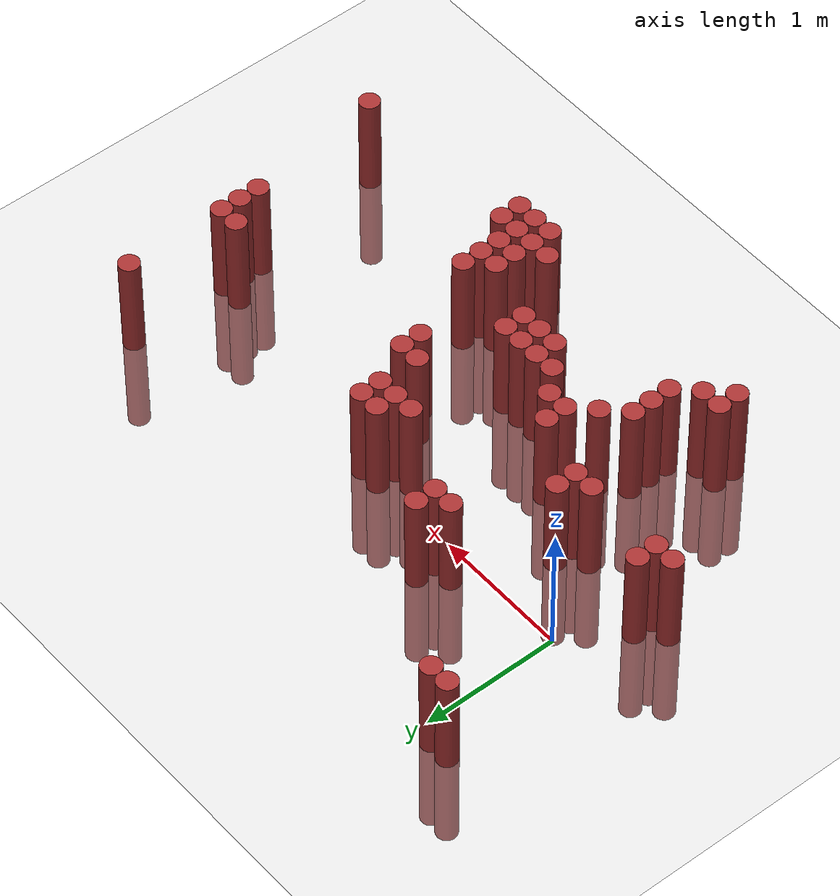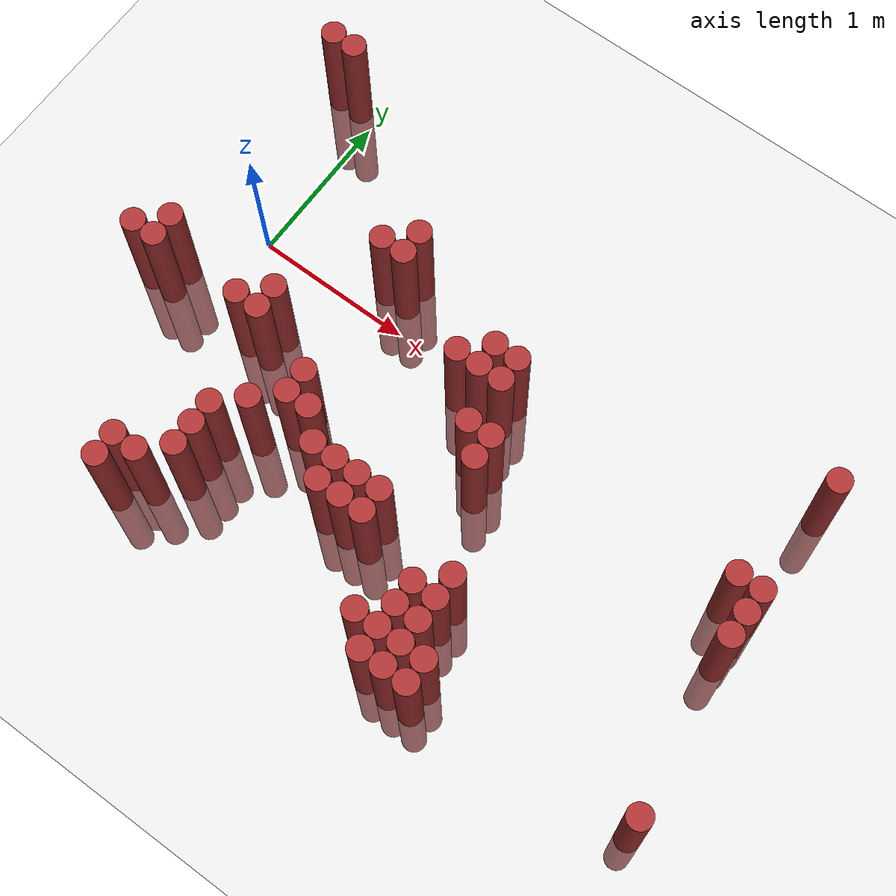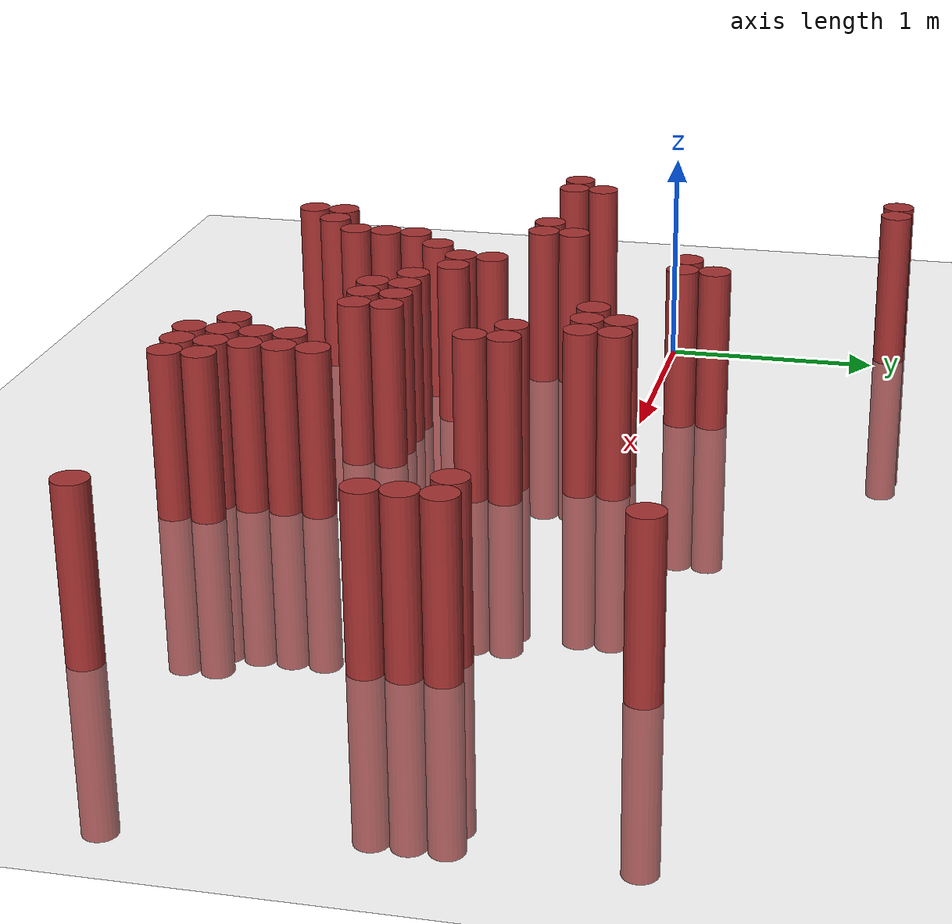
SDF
<sdf version="1.6">
 <world name="default">
  <model name="ground_plane">
   <static>1</static>
   <link name="link">
    <collision name="collision">
     <geometry><plane><normal>0 0 1</normal><size>100 100</size></plane></geometry>
     <surface><friction><ode><mu>100</mu><mu2>50</mu2></ode></friction></surface>
    </collision>
    <visual name="visual">
     <cast_shadows>0</cast_shadows>
     <geometry><plane><normal>0 0 1</normal><size>100 100</size></plane></geometry>
     <material>
      <script><uri>file://media/materials/scripts/gazebo.material</uri><name>Gazebo/Grey</name></script>
     </material>
    </visual>
   </link>
  </model>
  <model name="unit_cylinder_349">
   <static>1</static>
   <pose>-0.425000 -0.575000 0.000000 0.000000 0.000000 0.000000</pose>
   <link name="link">
    <inertial>
     <mass>1</mass>
     <inertia><ixx>0.145833</ixx><ixy>0</ixy><ixz>0</ixz><iyy>0.145833</iyy><iyz>0</iyz><izz>0.125</izz></inertia>
    </inertial>
    <collision name="collision">
     <geometry><cylinder><radius>0.075000</radius><length>1.5</length></cylinder></geometry>
    </collision>
    <visual name="visual">
     <geometry><cylinder><radius>0.075000</radius><length>1.5</length></cylinder></geometry>
     <material>
      <ambient>0.648000 0.192000 0.192000 1</ambient>
      <diffuse>0.648000 0.192000 0.192000 1</diffuse>
     </material>
     <material>
      <script><name>Gazebo/Grey</name><uri>file://media/materials/scripts/gazebo.material</uri></script>
     </material>
    </visual>
   </link>
  </model>
  <model name="unit_cylinder_351">
   <static>1</static>
   <pose>-0.275000 -0.575000 0.000000 0.000000 0.000000 0.000000</pose>
   <link name="link">
    <inertial>
     <mass>1</mass>
     <inertia><ixx>0.145833</ixx><ixy>0</ixy><ixz>0</ixz><iyy>0.145833</iyy><iyz>0</iyz><izz>0.125</izz></inertia>
    </inertial>
    <collision name="collision">
     <geometry><cylinder><radius>0.075000</radius><length>1.5</length></cylinder></geometry>
    </collision>
    <visual name="visual">
     <geometry><cylinder><radius>0.075000</radius><length>1.5</length></cylinder></geometry>
     <material>
      <ambient>0.648000 0.192000 0.192000 1</ambient>
      <diffuse>0.648000 0.192000 0.192000 1</diffuse>
     </material>
     <material>
      <script><name>Gazebo/Grey</name><uri>file://media/materials/scripts/gazebo.material</uri></script>
     </material>
    </visual>
   </link>
  </model>
  <model name="unit_cylinder_352">
   <static>1</static>
   <pose>-0.275000 -0.425000 0.000000 0.000000 0.000000 0.000000</pose>
   <link name="link">
    <inertial>
     <mass>1</mass>
     <inertia><ixx>0.145833</ixx><ixy>0</ixy><ixz>0</ixz><iyy>0.145833</iyy><iyz>0</iyz><izz>0.125</izz></inertia>
    </inertial>
    <collision name="collision">
     <geometry><cylinder><radius>0.075000</radius><length>1.5</length></cylinder></geometry>
    </collision>
    <visual name="visual">
     <geometry><cylinder><radius>0.075000</radius><length>1.5</length></cylinder></geometry>
     <material>
      <ambient>0.648000 0.192000 0.192000 1</ambient>
      <diffuse>0.648000 0.192000 0.192000 1</diffuse>
     </material>
     <material>
      <script><name>Gazebo/Grey</name><uri>file://media/materials/scripts/gazebo.material</uri></script>
     </material>
    </visual>
   </link>
  </model>
  <model name="unit_cylinder_353">
   <static>1</static>
   <pose>-0.275000 1.075000 0.000000 0.000000 0.000000 0.000000</pose>
   <link name="link">
    <inertial>
     <mass>1</mass>
     <inertia><ixx>0.145833</ixx><ixy>0</ixy><ixz>0</ixz><iyy>0.145833</iyy><iyz>0</iyz><izz>0.125</izz></inertia>
    </inertial>
    <collision name="collision">
     <geometry><cylinder><radius>0.075000</radius><length>1.5</length></cylinder></geometry>
    </collision>
    <visual name="visual">
     <geometry><cylinder><radius>0.075000</radius><length>1.5</length></cylinder></geometry>
     <material>
      <ambient>0.648000 0.192000 0.192000 1</ambient>
      <diffuse>0.648000 0.192000 0.192000 1</diffuse>
     </material>
     <material>
      <script><name>Gazebo/Grey</name><uri>file://media/materials/scripts/gazebo.material</uri></script>
     </material>
    </visual>
   </link>
  </model>
  <model name="unit_cylinder_355">
   <static>1</static>
   <pose>-0.125000 1.075000 0.000000 0.000000 0.000000 0.000000</pose>
   <link name="link">
    <inertial>
     <mass>1</mass>
     <inertia><ixx>0.145833</ixx><ixy>0</ixy><ixz>0</ixz><iyy>0.145833</iyy><iyz>0</iyz><izz>0.125</izz></inertia>
    </inertial>
    <collision name="collision">
     <geometry><cylinder><radius>0.075000</radius><length>1.5</length></cylinder></geometry>
    </collision>
    <visual name="visual">
     <geometry><cylinder><radius>0.075000</radius><length>1.5</length></cylinder></geometry>
     <material>
      <ambient>0.648000 0.192000 0.192000 1</ambient>
      <diffuse>0.648000 0.192000 0.192000 1</diffuse>
     </material>
     <material>
      <script><name>Gazebo/Grey</name><uri>file://media/materials/scripts/gazebo.material</uri></script>
     </material>
    </visual>
   </link>
  </model>
  <model name="unit_cylinder_360">
   <static>1</static>
   <pose>0.325000 -1.775000 0.000000 0.000000 0.000000 0.000000</pose>
   <link name="link">
    <inertial>
     <mass>1</mass>
     <inertia><ixx>0.145833</ixx><ixy>0</ixy><ixz>0</ixz><iyy>0.145833</iyy><iyz>0</iyz><izz>0.125</izz></inertia>
    </inertial>
    <collision name="collision">
     <geometry><cylinder><radius>0.075000</radius><length>1.5</length></cylinder></geometry>
    </collision>
    <visual name="visual">
     <geometry><cylinder><radius>0.075000</radius><length>1.5</length></cylinder></geometry>
     <material>
      <ambient>0.648000 0.192000 0.192000 1</ambient>
      <diffuse>0.648000 0.192000 0.192000 1</diffuse>
     </material>
     <material>
      <script><name>Gazebo/Grey</name><uri>file://media/materials/scripts/gazebo.material</uri></script>
     </material>
    </visual>
   </link>
  </model>
  <model name="unit_cylinder_361">
   <static>1</static>
   <pose>0.325000 -1.625000 0.000000 0.000000 0.000000 0.000000</pose>
   <link name="link">
    <inertial>
     <mass>1</mass>
     <inertia><ixx>0.145833</ixx><ixy>0</ixy><ixz>0</ixz><iyy>0.145833</iyy><iyz>0</iyz><izz>0.125</izz></inertia>
    </inertial>
    <collision name="collision">
     <geometry><cylinder><radius>0.075000</radius><length>1.5</length></cylinder></geometry>
    </collision>
    <visual name="visual">
     <geometry><cylinder><radius>0.075000</radius><length>1.5</length></cylinder></geometry>
     <material>
      <ambient>0.648000 0.192000 0.192000 1</ambient>
      <diffuse>0.648000 0.192000 0.192000 1</diffuse>
     </material>
     <material>
      <script><name>Gazebo/Grey</name><uri>file://media/materials/scripts/gazebo.material</uri></script>
     </material>
    </visual>
   </link>
  </model>
  <model name="unit_cylinder_362">
   <static>1</static>
   <pose>0.325000 -0.575000 0.000000 0.000000 0.000000 0.000000</pose>
   <link name="link">
    <inertial>
     <mass>1</mass>
     <inertia><ixx>0.145833</ixx><ixy>0</ixy><ixz>0</ixz><iyy>0.145833</iyy><iyz>0</iyz><izz>0.125</izz></inertia>
    </inertial>
    <collision name="collision">
     <geometry><cylinder><radius>0.075000</radius><length>1.5</length></cylinder></geometry>
    </collision>
    <visual name="visual">
     <geometry><cylinder><radius>0.075000</radius><length>1.5</length></cylinder></geometry>
     <material>
      <ambient>0.648000 0.192000 0.192000 1</ambient>
      <diffuse>0.648000 0.192000 0.192000 1</diffuse>
     </material>
     <material>
      <script><name>Gazebo/Grey</name><uri>file://media/materials/scripts/gazebo.material</uri></script>
     </material>
    </visual>
   </link>
  </model>
  <model name="unit_cylinder_369">
   <static>1</static>
   <pose>0.475000 -1.625000 0.000000 0.000000 0.000000 0.000000</pose>
   <link name="link">
    <inertial>
     <mass>1</mass>
     <inertia><ixx>0.145833</ixx><ixy>0</ixy><ixz>0</ixz><iyy>0.145833</iyy><iyz>0</iyz><izz>0.125</izz></inertia>
    </inertial>
    <collision name="collision">
     <geometry><cylinder><radius>0.075000</radius><length>1.5</length></cylinder></geometry>
    </collision>
    <visual name="visual">
     <geometry><cylinder><radius>0.075000</radius><length>1.5</length></cylinder></geometry>
     <material>
      <ambient>0.648000 0.192000 0.192000 1</ambient>
      <diffuse>0.648000 0.192000 0.192000 1</diffuse>
     </material>
     <material>
      <script><name>Gazebo/Grey</name><uri>file://media/materials/scripts/gazebo.material</uri></script>
     </material>
    </visual>
   </link>
  </model>
  <model name="unit_cylinder_370">
   <static>1</static>
   <pose>0.475000 -0.575000 0.000000 0.000000 0.000000 0.000000</pose>
   <link name="link">
    <inertial>
     <mass>1</mass>
     <inertia><ixx>0.145833</ixx><ixy>0</ixy><ixz>0</ixz><iyy>0.145833</iyy><iyz>0</iyz><izz>0.125</izz></inertia>
    </inertial>
    <collision name="collision">
     <geometry><cylinder><radius>0.075000</radius><length>1.5</length></cylinder></geometry>
    </collision>
    <visual name="visual">
     <geometry><cylinder><radius>0.075000</radius><length>1.5</length></cylinder></geometry>
     <material>
      <ambient>0.648000 0.192000 0.192000 1</ambient>
      <diffuse>0.648000 0.192000 0.192000 1</diffuse>
     </material>
     <material>
      <script><name>Gazebo/Grey</name><uri>file://media/materials/scripts/gazebo.material</uri></script>
     </material>
    </visual>
   </link>
  </model>
  <model name="unit_cylinder_371">
   <static>1</static>
   <pose>0.475000 -0.425000 0.000000 0.000000 0.000000 0.000000</pose>
   <link name="link">
    <inertial>
     <mass>1</mass>
     <inertia><ixx>0.145833</ixx><ixy>0</ixy><ixz>0</ixz><iyy>0.145833</iyy><iyz>0</iyz><izz>0.125</izz></inertia>
    </inertial>
    <collision name="collision">
     <geometry><cylinder><radius>0.075000</radius><length>1.5</length></cylinder></geometry>
    </collision>
    <visual name="visual">
     <geometry><cylinder><radius>0.075000</radius><length>1.5</length></cylinder></geometry>
     <material>
      <ambient>0.648000 0.192000 0.192000 1</ambient>
      <diffuse>0.648000 0.192000 0.192000 1</diffuse>
     </material>
     <material>
      <script><name>Gazebo/Grey</name><uri>file://media/materials/scripts/gazebo.material</uri></script>
     </material>
    </visual>
   </link>
  </model>
  <model name="unit_cylinder_377">
   <static>1</static>
   <pose>0.625000 -1.475000 0.000000 0.000000 0.000000 0.000000</pose>
   <link name="link">
    <inertial>
     <mass>1</mass>
     <inertia><ixx>0.145833</ixx><ixy>0</ixy><ixz>0</ixz><iyy>0.145833</iyy><iyz>0</iyz><izz>0.125</izz></inertia>
    </inertial>
    <collision name="collision">
     <geometry><cylinder><radius>0.075000</radius><length>1.5</length></cylinder></geometry>
    </collision>
    <visual name="visual">
     <geometry><cylinder><radius>0.075000</radius><length>1.5</length></cylinder></geometry>
     <material>
      <ambient>0.648000 0.192000 0.192000 1</ambient>
      <diffuse>0.648000 0.192000 0.192000 1</diffuse>
     </material>
     <material>
      <script><name>Gazebo/Grey</name><uri>file://media/materials/scripts/gazebo.material</uri></script>
     </material>
    </visual>
   </link>
  </model>
  <model name="unit_cylinder_378">
   <static>1</static>
   <pose>0.625000 -1.325000 0.000000 0.000000 0.000000 0.000000</pose>
   <link name="link">
    <inertial>
     <mass>1</mass>
     <inertia><ixx>0.145833</ixx><ixy>0</ixy><ixz>0</ixz><iyy>0.145833</iyy><iyz>0</iyz><izz>0.125</izz></inertia>
    </inertial>
    <collision name="collision">
     <geometry><cylinder><radius>0.075000</radius><length>1.5</length></cylinder></geometry>
    </collision>
    <visual name="visual">
     <geometry><cylinder><radius>0.075000</radius><length>1.5</length></cylinder></geometry>
     <material>
      <ambient>0.648000 0.192000 0.192000 1</ambient>
      <diffuse>0.648000 0.192000 0.192000 1</diffuse>
     </material>
     <material>
      <script><name>Gazebo/Grey</name><uri>file://media/materials/scripts/gazebo.material</uri></script>
     </material>
    </visual>
   </link>
  </model>
  <model name="unit_cylinder_379">
   <static>1</static>
   <pose>0.625000 -1.175000 0.000000 0.000000 0.000000 0.000000</pose>
   <link name="link">
    <inertial>
     <mass>1</mass>
     <inertia><ixx>0.145833</ixx><ixy>0</ixy><ixz>0</ixz><iyy>0.145833</iyy><iyz>0</iyz><izz>0.125</izz></inertia>
    </inertial>
    <collision name="collision">
     <geometry><cylinder><radius>0.075000</radius><length>1.5</length></cylinder></geometry>
    </collision>
    <visual name="visual">
     <geometry><cylinder><radius>0.075000</radius><length>1.5</length></cylinder></geometry>
     <material>
      <ambient>0.648000 0.192000 0.192000 1</ambient>
      <diffuse>0.648000 0.192000 0.192000 1</diffuse>
     </material>
     <material>
      <script><name>Gazebo/Grey</name><uri>file://media/materials/scripts/gazebo.material</uri></script>
     </material>
    </visual>
   </link>
  </model>
  <model name="unit_cylinder_381">
   <static>1</static>
   <pose>0.775000 -1.025000 0.000000 0.000000 0.000000 0.000000</pose>
   <link name="link">
    <inertial>
     <mass>1</mass>
     <inertia><ixx>0.145833</ixx><ixy>0</ixy><ixz>0</ixz><iyy>0.145833</iyy><iyz>0</iyz><izz>0.125</izz></inertia>
    </inertial>
    <collision name="collision">
     <geometry><cylinder><radius>0.075000</radius><length>1.5</length></cylinder></geometry>
    </collision>
    <visual name="visual">
     <geometry><cylinder><radius>0.075000</radius><length>1.5</length></cylinder></geometry>
     <material>
      <ambient>0.648000 0.192000 0.192000 1</ambient>
      <diffuse>0.648000 0.192000 0.192000 1</diffuse>
     </material>
     <material>
      <script><name>Gazebo/Grey</name><uri>file://media/materials/scripts/gazebo.material</uri></script>
     </material>
    </visual>
   </link>
  </model>
  <model name="unit_cylinder_382">
   <static>1</static>
   <pose>0.775000 0.175000 0.000000 0.000000 0.000000 0.000000</pose>
   <link name="link">
    <inertial>
     <mass>1</mass>
     <inertia><ixx>0.145833</ixx><ixy>0</ixy><ixz>0</ixz><iyy>0.145833</iyy><iyz>0</iyz><izz>0.125</izz></inertia>
    </inertial>
    <collision name="collision">
     <geometry><cylinder><radius>0.075000</radius><length>1.5</length></cylinder></geometry>
    </collision>
    <visual name="visual">
     <geometry><cylinder><radius>0.075000</radius><length>1.5</length></cylinder></geometry>
     <material>
      <ambient>0.648000 0.192000 0.192000 1</ambient>
      <diffuse>0.648000 0.192000 0.192000 1</diffuse>
     </material>
     <material>
      <script><name>Gazebo/Grey</name><uri>file://media/materials/scripts/gazebo.material</uri></script>
     </material>
    </visual>
   </link>
  </model>
  <model name="unit_cylinder_383">
   <static>1</static>
   <pose>0.925000 -0.875000 0.000000 0.000000 0.000000 0.000000</pose>
   <link name="link">
    <inertial>
     <mass>1</mass>
     <inertia><ixx>0.145833</ixx><ixy>0</ixy><ixz>0</ixz><iyy>0.145833</iyy><iyz>0</iyz><izz>0.125</izz></inertia>
    </inertial>
    <collision name="collision">
     <geometry><cylinder><radius>0.075000</radius><length>1.5</length></cylinder></geometry>
    </collision>
    <visual name="visual">
     <geometry><cylinder><radius>0.075000</radius><length>1.5</length></cylinder></geometry>
     <material>
      <ambient>0.648000 0.192000 0.192000 1</ambient>
      <diffuse>0.648000 0.192000 0.192000 1</diffuse>
     </material>
     <material>
      <script><name>Gazebo/Grey</name><uri>file://media/materials/scripts/gazebo.material</uri></script>
     </material>
    </visual>
   </link>
  </model>
  <model name="unit_cylinder_384">
   <static>1</static>
   <pose>0.925000 -0.725000 0.000000 0.000000 0.000000 0.000000</pose>
   <link name="link">
    <inertial>
     <mass>1</mass>
     <inertia><ixx>0.145833</ixx><ixy>0</ixy><ixz>0</ixz><iyy>0.145833</iyy><iyz>0</iyz><izz>0.125</izz></inertia>
    </inertial>
    <collision name="collision">
     <geometry><cylinder><radius>0.075000</radius><length>1.5</length></cylinder></geometry>
    </collision>
    <visual name="visual">
     <geometry><cylinder><radius>0.075000</radius><length>1.5</length></cylinder></geometry>
     <material>
      <ambient>0.648000 0.192000 0.192000 1</ambient>
      <diffuse>0.648000 0.192000 0.192000 1</diffuse>
     </material>
     <material>
      <script><name>Gazebo/Grey</name><uri>file://media/materials/scripts/gazebo.material</uri></script>
     </material>
    </visual>
   </link>
  </model>
  <model name="unit_cylinder_385">
   <static>1</static>
   <pose>0.925000 0.175000 0.000000 0.000000 0.000000 0.000000</pose>
   <link name="link">
    <inertial>
     <mass>1</mass>
     <inertia><ixx>0.145833</ixx><ixy>0</ixy><ixz>0</ixz><iyy>0.145833</iyy><iyz>0</iyz><izz>0.125</izz></inertia>
    </inertial>
    <collision name="collision">
     <geometry><cylinder><radius>0.075000</radius><length>1.5</length></cylinder></geometry>
    </collision>
    <visual name="visual">
     <geometry><cylinder><radius>0.075000</radius><length>1.5</length></cylinder></geometry>
     <material>
      <ambient>0.648000 0.192000 0.192000 1</ambient>
      <diffuse>0.648000 0.192000 0.192000 1</diffuse>
     </material>
     <material>
      <script><name>Gazebo/Grey</name><uri>file://media/materials/scripts/gazebo.material</uri></script>
     </material>
    </visual>
   </link>
  </model>
  <model name="unit_cylinder_386">
   <static>1</static>
   <pose>0.925000 0.325000 0.000000 0.000000 0.000000 0.000000</pose>
   <link name="link">
    <inertial>
     <mass>1</mass>
     <inertia><ixx>0.145833</ixx><ixy>0</ixy><ixz>0</ixz><iyy>0.145833</iyy><iyz>0</iyz><izz>0.125</izz></inertia>
    </inertial>
    <collision name="collision">
     <geometry><cylinder><radius>0.075000</radius><length>1.5</length></cylinder></geometry>
    </collision>
    <visual name="visual">
     <geometry><cylinder><radius>0.075000</radius><length>1.5</length></cylinder></geometry>
     <material>
      <ambient>0.648000 0.192000 0.192000 1</ambient>
      <diffuse>0.648000 0.192000 0.192000 1</diffuse>
     </material>
     <material>
      <script><name>Gazebo/Grey</name><uri>file://media/materials/scripts/gazebo.material</uri></script>
     </material>
    </visual>
   </link>
  </model>
  <model name="unit_cylinder_387">
   <static>1</static>
   <pose>1.075000 -0.875000 0.000000 0.000000 0.000000 0.000000</pose>
   <link name="link">
    <inertial>
     <mass>1</mass>
     <inertia><ixx>0.145833</ixx><ixy>0</ixy><ixz>0</ixz><iyy>0.145833</iyy><iyz>0</iyz><izz>0.125</izz></inertia>
    </inertial>
    <collision name="collision">
     <geometry><cylinder><radius>0.075000</radius><length>1.5</length></cylinder></geometry>
    </collision>
    <visual name="visual">
     <geometry><cylinder><radius>0.075000</radius><length>1.5</length></cylinder></geometry>
     <material>
      <ambient>0.648000 0.192000 0.192000 1</ambient>
      <diffuse>0.648000 0.192000 0.192000 1</diffuse>
     </material>
     <material>
      <script><name>Gazebo/Grey</name><uri>file://media/materials/scripts/gazebo.material</uri></script>
     </material>
    </visual>
   </link>
  </model>
  <model name="unit_cylinder_388">
   <static>1</static>
   <pose>1.225000 -1.025000 0.000000 0.000000 0.000000 0.000000</pose>
   <link name="link">
    <inertial>
     <mass>1</mass>
     <inertia><ixx>0.145833</ixx><ixy>0</ixy><ixz>0</ixz><iyy>0.145833</iyy><iyz>0</iyz><izz>0.125</izz></inertia>
    </inertial>
    <collision name="collision">
     <geometry><cylinder><radius>0.075000</radius><length>1.5</length></cylinder></geometry>
    </collision>
    <visual name="visual">
     <geometry><cylinder><radius>0.075000</radius><length>1.5</length></cylinder></geometry>
     <material>
      <ambient>0.648000 0.192000 0.192000 1</ambient>
      <diffuse>0.648000 0.192000 0.192000 1</diffuse>
     </material>
     <material>
      <script><name>Gazebo/Grey</name><uri>file://media/materials/scripts/gazebo.material</uri></script>
     </material>
    </visual>
   </link>
  </model>
  <model name="unit_cylinder_389">
   <static>1</static>
   <pose>1.375000 -1.175000 0.000000 0.000000 0.000000 0.000000</pose>
   <link name="link">
    <inertial>
     <mass>1</mass>
     <inertia><ixx>0.145833</ixx><ixy>0</ixy><ixz>0</ixz><iyy>0.145833</iyy><iyz>0</iyz><izz>0.125</izz></inertia>
    </inertial>
    <collision name="collision">
     <geometry><cylinder><radius>0.075000</radius><length>1.5</length></cylinder></geometry>
    </collision>
    <visual name="visual">
     <geometry><cylinder><radius>0.075000</radius><length>1.5</length></cylinder></geometry>
     <material>
      <ambient>0.648000 0.192000 0.192000 1</ambient>
      <diffuse>0.648000 0.192000 0.192000 1</diffuse>
     </material>
     <material>
      <script><name>Gazebo/Grey</name><uri>file://media/materials/scripts/gazebo.material</uri></script>
     </material>
    </visual>
   </link>
  </model>
  <model name="unit_cylinder_390">
   <static>1</static>
   <pose>1.375000 -1.025000 0.000000 0.000000 0.000000 0.000000</pose>
   <link name="link">
    <inertial>
     <mass>1</mass>
     <inertia><ixx>0.145833</ixx><ixy>0</ixy><ixz>0</ixz><iyy>0.145833</iyy><iyz>0</iyz><izz>0.125</izz></inertia>
    </inertial>
    <collision name="collision">
     <geometry><cylinder><radius>0.075000</radius><length>1.5</length></cylinder></geometry>
    </collision>
    <visual name="visual">
     <geometry><cylinder><radius>0.075000</radius><length>1.5</length></cylinder></geometry>
     <material>
      <ambient>0.648000 0.192000 0.192000 1</ambient>
      <diffuse>0.648000 0.192000 0.192000 1</diffuse>
     </material>
     <material>
      <script><name>Gazebo/Grey</name><uri>file://media/materials/scripts/gazebo.material</uri></script>
     </material>
    </visual>
   </link>
  </model>
  <model name="unit_cylinder_392">
   <static>1</static>
   <pose>1.525000 -1.175000 0.000000 0.000000 0.000000 0.000000</pose>
   <link name="link">
    <inertial>
     <mass>1</mass>
     <inertia><ixx>0.145833</ixx><ixy>0</ixy><ixz>0</ixz><iyy>0.145833</iyy><iyz>0</iyz><izz>0.125</izz></inertia>
    </inertial>
    <collision name="collision">
     <geometry><cylinder><radius>0.075000</radius><length>1.5</length></cylinder></geometry>
    </collision>
    <visual name="visual">
     <geometry><cylinder><radius>0.075000</radius><length>1.5</length></cylinder></geometry>
     <material>
      <ambient>0.648000 0.192000 0.192000 1</ambient>
      <diffuse>0.648000 0.192000 0.192000 1</diffuse>
     </material>
     <material>
      <script><name>Gazebo/Grey</name><uri>file://media/materials/scripts/gazebo.material</uri></script>
     </material>
    </visual>
   </link>
  </model>
  <model name="unit_cylinder_393">
   <static>1</static>
   <pose>1.525000 -1.025000 0.000000 0.000000 0.000000 0.000000</pose>
   <link name="link">
    <inertial>
     <mass>1</mass>
     <inertia><ixx>0.145833</ixx><ixy>0</ixy><ixz>0</ixz><iyy>0.145833</iyy><iyz>0</iyz><izz>0.125</izz></inertia>
    </inertial>
    <collision name="collision">
     <geometry><cylinder><radius>0.075000</radius><length>1.5</length></cylinder></geometry>
    </collision>
    <visual name="visual">
     <geometry><cylinder><radius>0.075000</radius><length>1.5</length></cylinder></geometry>
     <material>
      <ambient>0.648000 0.192000 0.192000 1</ambient>
      <diffuse>0.648000 0.192000 0.192000 1</diffuse>
     </material>
     <material>
      <script><name>Gazebo/Grey</name><uri>file://media/materials/scripts/gazebo.material</uri></script>
     </material>
    </visual>
   </link>
  </model>
  <model name="unit_cylinder_394">
   <static>1</static>
   <pose>1.525000 -0.125000 0.000000 0.000000 0.000000 0.000000</pose>
   <link name="link">
    <inertial>
     <mass>1</mass>
     <inertia><ixx>0.145833</ixx><ixy>0</ixy><ixz>0</ixz><iyy>0.145833</iyy><iyz>0</iyz><izz>0.125</izz></inertia>
    </inertial>
    <collision name="collision">
     <geometry><cylinder><radius>0.075000</radius><length>1.5</length></cylinder></geometry>
    </collision>
    <visual name="visual">
     <geometry><cylinder><radius>0.075000</radius><length>1.5</length></cylinder></geometry>
     <material>
      <ambient>0.648000 0.192000 0.192000 1</ambient>
      <diffuse>0.648000 0.192000 0.192000 1</diffuse>
     </material>
     <material>
      <script><name>Gazebo/Grey</name><uri>file://media/materials/scripts/gazebo.material</uri></script>
     </material>
    </visual>
   </link>
  </model>
  <model name="unit_cylinder_397">
   <static>1</static>
   <pose>1.675000 -1.175000 0.000000 0.000000 0.000000 0.000000</pose>
   <link name="link">
    <inertial>
     <mass>1</mass>
     <inertia><ixx>0.145833</ixx><ixy>0</ixy><ixz>0</ixz><iyy>0.145833</iyy><iyz>0</iyz><izz>0.125</izz></inertia>
    </inertial>
    <collision name="collision">
     <geometry><cylinder><radius>0.075000</radius><length>1.5</length></cylinder></geometry>
    </collision>
    <visual name="visual">
     <geometry><cylinder><radius>0.075000</radius><length>1.5</length></cylinder></geometry>
     <material>
      <ambient>0.648000 0.192000 0.192000 1</ambient>
      <diffuse>0.648000 0.192000 0.192000 1</diffuse>
     </material>
     <material>
      <script><name>Gazebo/Grey</name><uri>file://media/materials/scripts/gazebo.material</uri></script>
     </material>
    </visual>
   </link>
  </model>
  <model name="unit_cylinder_398">
   <static>1</static>
   <pose>1.675000 -1.025000 0.000000 0.000000 0.000000 0.000000</pose>
   <link name="link">
    <inertial>
     <mass>1</mass>
     <inertia><ixx>0.145833</ixx><ixy>0</ixy><ixz>0</ixz><iyy>0.145833</iyy><iyz>0</iyz><izz>0.125</izz></inertia>
    </inertial>
    <collision name="collision">
     <geometry><cylinder><radius>0.075000</radius><length>1.5</length></cylinder></geometry>
    </collision>
    <visual name="visual">
     <geometry><cylinder><radius>0.075000</radius><length>1.5</length></cylinder></geometry>
     <material>
      <ambient>0.648000 0.192000 0.192000 1</ambient>
      <diffuse>0.648000 0.192000 0.192000 1</diffuse>
     </material>
     <material>
      <script><name>Gazebo/Grey</name><uri>file://media/materials/scripts/gazebo.material</uri></script>
     </material>
    </visual>
   </link>
  </model>
  <model name="unit_cylinder_399">
   <static>1</static>
   <pose>1.675000 -0.125000 0.000000 0.000000 0.000000 0.000000</pose>
   <link name="link">
    <inertial>
     <mass>1</mass>
     <inertia><ixx>0.145833</ixx><ixy>0</ixy><ixz>0</ixz><iyy>0.145833</iyy><iyz>0</iyz><izz>0.125</izz></inertia>
    </inertial>
    <collision name="collision">
     <geometry><cylinder><radius>0.075000</radius><length>1.5</length></cylinder></geometry>
    </collision>
    <visual name="visual">
     <geometry><cylinder><radius>0.075000</radius><length>1.5</length></cylinder></geometry>
     <material>
      <ambient>0.648000 0.192000 0.192000 1</ambient>
      <diffuse>0.648000 0.192000 0.192000 1</diffuse>
     </material>
     <material>
      <script><name>Gazebo/Grey</name><uri>file://media/materials/scripts/gazebo.material</uri></script>
     </material>
    </visual>
   </link>
  </model>
  <model name="unit_cylinder_400">
   <static>1</static>
   <pose>1.675000 0.025000 0.000000 0.000000 0.000000 0.000000</pose>
   <link name="link">
    <inertial>
     <mass>1</mass>
     <inertia><ixx>0.145833</ixx><ixy>0</ixy><ixz>0</ixz><iyy>0.145833</iyy><iyz>0</iyz><izz>0.125</izz></inertia>
    </inertial>
    <collision name="collision">
     <geometry><cylinder><radius>0.075000</radius><length>1.5</length></cylinder></geometry>
    </collision>
    <visual name="visual">
     <geometry><cylinder><radius>0.075000</radius><length>1.5</length></cylinder></geometry>
     <material>
      <ambient>0.648000 0.192000 0.192000 1</ambient>
      <diffuse>0.648000 0.192000 0.192000 1</diffuse>
     </material>
     <material>
      <script><name>Gazebo/Grey</name><uri>file://media/materials/scripts/gazebo.material</uri></script>
     </material>
    </visual>
   </link>
  </model>
  <model name="unit_cylinder_401">
   <static>1</static>
   <pose>1.825000 -0.425000 0.000000 0.000000 0.000000 0.000000</pose>
   <link name="link">
    <inertial>
     <mass>1</mass>
     <inertia><ixx>0.145833</ixx><ixy>0</ixy><ixz>0</ixz><iyy>0.145833</iyy><iyz>0</iyz><izz>0.125</izz></inertia>
    </inertial>
    <collision name="collision">
     <geometry><cylinder><radius>0.075000</radius><length>1.5</length></cylinder></geometry>
    </collision>
    <visual name="visual">
     <geometry><cylinder><radius>0.075000</radius><length>1.5</length></cylinder></geometry>
     <material>
      <ambient>0.648000 0.192000 0.192000 1</ambient>
      <diffuse>0.648000 0.192000 0.192000 1</diffuse>
     </material>
     <material>
      <script><name>Gazebo/Grey</name><uri>file://media/materials/scripts/gazebo.material</uri></script>
     </material>
    </visual>
   </link>
  </model>
  <model name="unit_cylinder_402">
   <static>1</static>
   <pose>1.825000 -0.125000 0.000000 0.000000 0.000000 0.000000</pose>
   <link name="link">
    <inertial>
     <mass>1</mass>
     <inertia><ixx>0.145833</ixx><ixy>0</ixy><ixz>0</ixz><iyy>0.145833</iyy><iyz>0</iyz><izz>0.125</izz></inertia>
    </inertial>
    <collision name="collision">
     <geometry><cylinder><radius>0.075000</radius><length>1.5</length></cylinder></geometry>
    </collision>
    <visual name="visual">
     <geometry><cylinder><radius>0.075000</radius><length>1.5</length></cylinder></geometry>
     <material>
      <ambient>0.648000 0.192000 0.192000 1</ambient>
      <diffuse>0.648000 0.192000 0.192000 1</diffuse>
     </material>
     <material>
      <script><name>Gazebo/Grey</name><uri>file://media/materials/scripts/gazebo.material</uri></script>
     </material>
    </visual>
   </link>
  </model>
  <model name="unit_cylinder_403">
   <static>1</static>
   <pose>1.825000 0.025000 0.000000 0.000000 0.000000 0.000000</pose>
   <link name="link">
    <inertial>
     <mass>1</mass>
     <inertia><ixx>0.145833</ixx><ixy>0</ixy><ixz>0</ixz><iyy>0.145833</iyy><iyz>0</iyz><izz>0.125</izz></inertia>
    </inertial>
    <collision name="collision">
     <geometry><cylinder><radius>0.075000</radius><length>1.5</length></cylinder></geometry>
    </collision>
    <visual name="visual">
     <geometry><cylinder><radius>0.075000</radius><length>1.5</length></cylinder></geometry>
     <material>
      <ambient>0.648000 0.192000 0.192000 1</ambient>
      <diffuse>0.648000 0.192000 0.192000 1</diffuse>
     </material>
     <material>
      <script><name>Gazebo/Grey</name><uri>file://media/materials/scripts/gazebo.material</uri></script>
     </material>
    </visual>
   </link>
  </model>
  <model name="unit_cylinder_406">
   <static>1</static>
   <pose>1.975000 -1.625000 0.000000 0.000000 0.000000 0.000000</pose>
   <link name="link">
    <inertial>
     <mass>1</mass>
     <inertia><ixx>0.145833</ixx><ixy>0</ixy><ixz>0</ixz><iyy>0.145833</iyy><iyz>0</iyz><izz>0.125</izz></inertia>
    </inertial>
    <collision name="collision">
     <geometry><cylinder><radius>0.075000</radius><length>1.5</length></cylinder></geometry>
    </collision>
    <visual name="visual">
     <geometry><cylinder><radius>0.075000</radius><length>1.5</length></cylinder></geometry>
     <material>
      <ambient>0.648000 0.192000 0.192000 1</ambient>
      <diffuse>0.648000 0.192000 0.192000 1</diffuse>
     </material>
     <material>
      <script><name>Gazebo/Grey</name><uri>file://media/materials/scripts/gazebo.material</uri></script>
     </material>
    </visual>
   </link>
  </model>
  <model name="unit_cylinder_407">
   <static>1</static>
   <pose>1.975000 -0.575000 0.000000 0.000000 0.000000 0.000000</pose>
   <link name="link">
    <inertial>
     <mass>1</mass>
     <inertia><ixx>0.145833</ixx><ixy>0</ixy><ixz>0</ixz><iyy>0.145833</iyy><iyz>0</iyz><izz>0.125</izz></inertia>
    </inertial>
    <collision name="collision">
     <geometry><cylinder><radius>0.075000</radius><length>1.5</length></cylinder></geometry>
    </collision>
    <visual name="visual">
     <geometry><cylinder><radius>0.075000</radius><length>1.5</length></cylinder></geometry>
     <material>
      <ambient>0.648000 0.192000 0.192000 1</ambient>
      <diffuse>0.648000 0.192000 0.192000 1</diffuse>
     </material>
     <material>
      <script><name>Gazebo/Grey</name><uri>file://media/materials/scripts/gazebo.material</uri></script>
     </material>
    </visual>
   </link>
  </model>
  <model name="unit_cylinder_408">
   <static>1</static>
   <pose>1.975000 -0.425000 0.000000 0.000000 0.000000 0.000000</pose>
   <link name="link">
    <inertial>
     <mass>1</mass>
     <inertia><ixx>0.145833</ixx><ixy>0</ixy><ixz>0</ixz><iyy>0.145833</iyy><iyz>0</iyz><izz>0.125</izz></inertia>
    </inertial>
    <collision name="collision">
     <geometry><cylinder><radius>0.075000</radius><length>1.5</length></cylinder></geometry>
    </collision>
    <visual name="visual">
     <geometry><cylinder><radius>0.075000</radius><length>1.5</length></cylinder></geometry>
     <material>
      <ambient>0.648000 0.192000 0.192000 1</ambient>
      <diffuse>0.648000 0.192000 0.192000 1</diffuse>
     </material>
     <material>
      <script><name>Gazebo/Grey</name><uri>file://media/materials/scripts/gazebo.material</uri></script>
     </material>
    </visual>
   </link>
  </model>
  <model name="unit_cylinder_412">
   <static>1</static>
   <pose>2.125000 -1.775000 0.000000 0.000000 0.000000 0.000000</pose>
   <link name="link">
    <inertial>
     <mass>1</mass>
     <inertia><ixx>0.145833</ixx><ixy>0</ixy><ixz>0</ixz><iyy>0.145833</iyy><iyz>0</iyz><izz>0.125</izz></inertia>
    </inertial>
    <collision name="collision">
     <geometry><cylinder><radius>0.075000</radius><length>1.5</length></cylinder></geometry>
    </collision>
    <visual name="visual">
     <geometry><cylinder><radius>0.075000</radius><length>1.5</length></cylinder></geometry>
     <material>
      <ambient>0.648000 0.192000 0.192000 1</ambient>
      <diffuse>0.648000 0.192000 0.192000 1</diffuse>
     </material>
     <material>
      <script><name>Gazebo/Grey</name><uri>file://media/materials/scripts/gazebo.material</uri></script>
     </material>
    </visual>
   </link>
  </model>
  <model name="unit_cylinder_413">
   <static>1</static>
   <pose>2.125000 -1.625000 0.000000 0.000000 0.000000 0.000000</pose>
   <link name="link">
    <inertial>
     <mass>1</mass>
     <inertia><ixx>0.145833</ixx><ixy>0</ixy><ixz>0</ixz><iyy>0.145833</iyy><iyz>0</iyz><izz>0.125</izz></inertia>
    </inertial>
    <collision name="collision">
     <geometry><cylinder><radius>0.075000</radius><length>1.5</length></cylinder></geometry>
    </collision>
    <visual name="visual">
     <geometry><cylinder><radius>0.075000</radius><length>1.5</length></cylinder></geometry>
     <material>
      <ambient>0.648000 0.192000 0.192000 1</ambient>
      <diffuse>0.648000 0.192000 0.192000 1</diffuse>
     </material>
     <material>
      <script><name>Gazebo/Grey</name><uri>file://media/materials/scripts/gazebo.material</uri></script>
     </material>
    </visual>
   </link>
  </model>
  <model name="unit_cylinder_414">
   <static>1</static>
   <pose>2.125000 -1.475000 0.000000 0.000000 0.000000 0.000000</pose>
   <link name="link">
    <inertial>
     <mass>1</mass>
     <inertia><ixx>0.145833</ixx><ixy>0</ixy><ixz>0</ixz><iyy>0.145833</iyy><iyz>0</iyz><izz>0.125</izz></inertia>
    </inertial>
    <collision name="collision">
     <geometry><cylinder><radius>0.075000</radius><length>1.5</length></cylinder></geometry>
    </collision>
    <visual name="visual">
     <geometry><cylinder><radius>0.075000</radius><length>1.5</length></cylinder></geometry>
     <material>
      <ambient>0.648000 0.192000 0.192000 1</ambient>
      <diffuse>0.648000 0.192000 0.192000 1</diffuse>
     </material>
     <material>
      <script><name>Gazebo/Grey</name><uri>file://media/materials/scripts/gazebo.material</uri></script>
     </material>
    </visual>
   </link>
  </model>
  <model name="unit_cylinder_415">
   <static>1</static>
   <pose>2.125000 -1.325000 0.000000 0.000000 0.000000 0.000000</pose>
   <link name="link">
    <inertial>
     <mass>1</mass>
     <inertia><ixx>0.145833</ixx><ixy>0</ixy><ixz>0</ixz><iyy>0.145833</iyy><iyz>0</iyz><izz>0.125</izz></inertia>
    </inertial>
    <collision name="collision">
     <geometry><cylinder><radius>0.075000</radius><length>1.5</length></cylinder></geometry>
    </collision>
    <visual name="visual">
     <geometry><cylinder><radius>0.075000</radius><length>1.5</length></cylinder></geometry>
     <material>
      <ambient>0.648000 0.192000 0.192000 1</ambient>
      <diffuse>0.648000 0.192000 0.192000 1</diffuse>
     </material>
     <material>
      <script><name>Gazebo/Grey</name><uri>file://media/materials/scripts/gazebo.material</uri></script>
     </material>
    </visual>
   </link>
  </model>
  <model name="unit_cylinder_419">
   <static>1</static>
   <pose>2.275000 -1.775000 0.000000 0.000000 0.000000 0.000000</pose>
   <link name="link">
    <inertial>
     <mass>1</mass>
     <inertia><ixx>0.145833</ixx><ixy>0</ixy><ixz>0</ixz><iyy>0.145833</iyy><iyz>0</iyz><izz>0.125</izz></inertia>
    </inertial>
    <collision name="collision">
     <geometry><cylinder><radius>0.075000</radius><length>1.5</length></cylinder></geometry>
    </collision>
    <visual name="visual">
     <geometry><cylinder><radius>0.075000</radius><length>1.5</length></cylinder></geometry>
     <material>
      <ambient>0.648000 0.192000 0.192000 1</ambient>
      <diffuse>0.648000 0.192000 0.192000 1</diffuse>
     </material>
     <material>
      <script><name>Gazebo/Grey</name><uri>file://media/materials/scripts/gazebo.material</uri></script>
     </material>
    </visual>
   </link>
  </model>
  <model name="unit_cylinder_420">
   <static>1</static>
   <pose>2.275000 -1.625000 0.000000 0.000000 0.000000 0.000000</pose>
   <link name="link">
    <inertial>
     <mass>1</mass>
     <inertia><ixx>0.145833</ixx><ixy>0</ixy><ixz>0</ixz><iyy>0.145833</iyy><iyz>0</iyz><izz>0.125</izz></inertia>
    </inertial>
    <collision name="collision">
     <geometry><cylinder><radius>0.075000</radius><length>1.5</length></cylinder></geometry>
    </collision>
    <visual name="visual">
     <geometry><cylinder><radius>0.075000</radius><length>1.5</length></cylinder></geometry>
     <material>
      <ambient>0.648000 0.192000 0.192000 1</ambient>
      <diffuse>0.648000 0.192000 0.192000 1</diffuse>
     </material>
     <material>
      <script><name>Gazebo/Grey</name><uri>file://media/materials/scripts/gazebo.material</uri></script>
     </material>
    </visual>
   </link>
  </model>
  <model name="unit_cylinder_421">
   <static>1</static>
   <pose>2.275000 -1.475000 0.000000 0.000000 0.000000 0.000000</pose>
   <link name="link">
    <inertial>
     <mass>1</mass>
     <inertia><ixx>0.145833</ixx><ixy>0</ixy><ixz>0</ixz><iyy>0.145833</iyy><iyz>0</iyz><izz>0.125</izz></inertia>
    </inertial>
    <collision name="collision">
     <geometry><cylinder><radius>0.075000</radius><length>1.5</length></cylinder></geometry>
    </collision>
    <visual name="visual">
     <geometry><cylinder><radius>0.075000</radius><length>1.5</length></cylinder></geometry>
     <material>
      <ambient>0.648000 0.192000 0.192000 1</ambient>
      <diffuse>0.648000 0.192000 0.192000 1</diffuse>
     </material>
     <material>
      <script><name>Gazebo/Grey</name><uri>file://media/materials/scripts/gazebo.material</uri></script>
     </material>
    </visual>
   </link>
  </model>
  <model name="unit_cylinder_422">
   <static>1</static>
   <pose>2.275000 -1.325000 0.000000 0.000000 0.000000 0.000000</pose>
   <link name="link">
    <inertial>
     <mass>1</mass>
     <inertia><ixx>0.145833</ixx><ixy>0</ixy><ixz>0</ixz><iyy>0.145833</iyy><iyz>0</iyz><izz>0.125</izz></inertia>
    </inertial>
    <collision name="collision">
     <geometry><cylinder><radius>0.075000</radius><length>1.5</length></cylinder></geometry>
    </collision>
    <visual name="visual">
     <geometry><cylinder><radius>0.075000</radius><length>1.5</length></cylinder></geometry>
     <material>
      <ambient>0.648000 0.192000 0.192000 1</ambient>
      <diffuse>0.648000 0.192000 0.192000 1</diffuse>
     </material>
     <material>
      <script><name>Gazebo/Grey</name><uri>file://media/materials/scripts/gazebo.material</uri></script>
     </material>
    </visual>
   </link>
  </model>
  <model name="unit_cylinder_423">
   <static>1</static>
   <pose>2.275000 -1.175000 0.000000 0.000000 0.000000 0.000000</pose>
   <link name="link">
    <inertial>
     <mass>1</mass>
     <inertia><ixx>0.145833</ixx><ixy>0</ixy><ixz>0</ixz><iyy>0.145833</iyy><iyz>0</iyz><izz>0.125</izz></inertia>
    </inertial>
    <collision name="collision">
     <geometry><cylinder><radius>0.075000</radius><length>1.5</length></cylinder></geometry>
    </collision>
    <visual name="visual">
     <geometry><cylinder><radius>0.075000</radius><length>1.5</length></cylinder></geometry>
     <material>
      <ambient>0.648000 0.192000 0.192000 1</ambient>
      <diffuse>0.648000 0.192000 0.192000 1</diffuse>
     </material>
     <material>
      <script><name>Gazebo/Grey</name><uri>file://media/materials/scripts/gazebo.material</uri></script>
     </material>
    </visual>
   </link>
  </model>
  <model name="unit_cylinder_424">
   <static>1</static>
   <pose>2.425000 -1.775000 0.000000 0.000000 0.000000 0.000000</pose>
   <link name="link">
    <inertial>
     <mass>1</mass>
     <inertia><ixx>0.145833</ixx><ixy>0</ixy><ixz>0</ixz><iyy>0.145833</iyy><iyz>0</iyz><izz>0.125</izz></inertia>
    </inertial>
    <collision name="collision">
     <geometry><cylinder><radius>0.075000</radius><length>1.5</length></cylinder></geometry>
    </collision>
    <visual name="visual">
     <geometry><cylinder><radius>0.075000</radius><length>1.5</length></cylinder></geometry>
     <material>
      <ambient>0.648000 0.192000 0.192000 1</ambient>
      <diffuse>0.648000 0.192000 0.192000 1</diffuse>
     </material>
     <material>
      <script><name>Gazebo/Grey</name><uri>file://media/materials/scripts/gazebo.material</uri></script>
     </material>
    </visual>
   </link>
  </model>
  <model name="unit_cylinder_425">
   <static>1</static>
   <pose>2.425000 -1.625000 0.000000 0.000000 0.000000 0.000000</pose>
   <link name="link">
    <inertial>
     <mass>1</mass>
     <inertia><ixx>0.145833</ixx><ixy>0</ixy><ixz>0</ixz><iyy>0.145833</iyy><iyz>0</iyz><izz>0.125</izz></inertia>
    </inertial>
    <collision name="collision">
     <geometry><cylinder><radius>0.075000</radius><length>1.5</length></cylinder></geometry>
    </collision>
    <visual name="visual">
     <geometry><cylinder><radius>0.075000</radius><length>1.5</length></cylinder></geometry>
     <material>
      <ambient>0.648000 0.192000 0.192000 1</ambient>
      <diffuse>0.648000 0.192000 0.192000 1</diffuse>
     </material>
     <material>
      <script><name>Gazebo/Grey</name><uri>file://media/materials/scripts/gazebo.material</uri></script>
     </material>
    </visual>
   </link>
  </model>
  <model name="unit_cylinder_446">
   <static>1</static>
   <pose>3.475000 -0.275000 0.000000 0.000000 0.000000 0.000000</pose>
   <link name="link">
    <inertial>
     <mass>1</mass>
     <inertia><ixx>0.145833</ixx><ixy>0</ixy><ixz>0</ixz><iyy>0.145833</iyy><iyz>0</iyz><izz>0.125</izz></inertia>
    </inertial>
    <collision name="collision">
     <geometry><cylinder><radius>0.075000</radius><length>1.5</length></cylinder></geometry>
    </collision>
    <visual name="visual">
     <geometry><cylinder><radius>0.075000</radius><length>1.5</length></cylinder></geometry>
     <material>
      <ambient>0.648000 0.192000 0.192000 1</ambient>
      <diffuse>0.648000 0.192000 0.192000 1</diffuse>
     </material>
     <material>
      <script><name>Gazebo/Grey</name><uri>file://media/materials/scripts/gazebo.material</uri></script>
     </material>
    </visual>
   </link>
  </model>
  <model name="unit_cylinder_453">
   <static>1</static>
   <pose>3.625000 -0.575000 0.000000 0.000000 0.000000 0.000000</pose>
   <link name="link">
    <inertial>
     <mass>1</mass>
     <inertia><ixx>0.145833</ixx><ixy>0</ixy><ixz>0</ixz><iyy>0.145833</iyy><iyz>0</iyz><izz>0.125</izz></inertia>
    </inertial>
    <collision name="collision">
     <geometry><cylinder><radius>0.075000</radius><length>1.5</length></cylinder></geometry>
    </collision>
    <visual name="visual">
     <geometry><cylinder><radius>0.075000</radius><length>1.5</length></cylinder></geometry>
     <material>
      <ambient>0.648000 0.192000 0.192000 1</ambient>
      <diffuse>0.648000 0.192000 0.192000 1</diffuse>
     </material>
     <material>
      <script><name>Gazebo/Grey</name><uri>file://media/materials/scripts/gazebo.material</uri></script>
     </material>
    </visual>
   </link>
  </model>
  <model name="unit_cylinder_454">
   <static>1</static>
   <pose>3.625000 -0.425000 0.000000 0.000000 0.000000 0.000000</pose>
   <link name="link">
    <inertial>
     <mass>1</mass>
     <inertia><ixx>0.145833</ixx><ixy>0</ixy><ixz>0</ixz><iyy>0.145833</iyy><iyz>0</iyz><izz>0.125</izz></inertia>
    </inertial>
    <collision name="collision">
     <geometry><cylinder><radius>0.075000</radius><length>1.5</length></cylinder></geometry>
    </collision>
    <visual name="visual">
     <geometry><cylinder><radius>0.075000</radius><length>1.5</length></cylinder></geometry>
     <material>
      <ambient>0.648000 0.192000 0.192000 1</ambient>
      <diffuse>0.648000 0.192000 0.192000 1</diffuse>
     </material>
     <material>
      <script><name>Gazebo/Grey</name><uri>file://media/materials/scripts/gazebo.material</uri></script>
     </material>
    </visual>
   </link>
  </model>
  <model name="unit_cylinder_455">
   <static>1</static>
   <pose>3.625000 -0.275000 0.000000 0.000000 0.000000 0.000000</pose>
   <link name="link">
    <inertial>
     <mass>1</mass>
     <inertia><ixx>0.145833</ixx><ixy>0</ixy><ixz>0</ixz><iyy>0.145833</iyy><iyz>0</iyz><izz>0.125</izz></inertia>
    </inertial>
    <collision name="collision">
     <geometry><cylinder><radius>0.075000</radius><length>1.5</length></cylinder></geometry>
    </collision>
    <visual name="visual">
     <geometry><cylinder><radius>0.075000</radius><length>1.5</length></cylinder></geometry>
     <material>
      <ambient>0.648000 0.192000 0.192000 1</ambient>
      <diffuse>0.648000 0.192000 0.192000 1</diffuse>
     </material>
     <material>
      <script><name>Gazebo/Grey</name><uri>file://media/materials/scripts/gazebo.material</uri></script>
     </material>
    </visual>
   </link>
  </model>
  <model name="unit_cylinder_456">
   <static>1</static>
   <pose>3.625000 0.475000 0.000000 0.000000 0.000000 0.000000</pose>
   <link name="link">
    <inertial>
     <mass>1</mass>
     <inertia><ixx>0.145833</ixx><ixy>0</ixy><ixz>0</ixz><iyy>0.145833</iyy><iyz>0</iyz><izz>0.125</izz></inertia>
    </inertial>
    <collision name="collision">
     <geometry><cylinder><radius>0.075000</radius><length>1.5</length></cylinder></geometry>
    </collision>
    <visual name="visual">
     <geometry><cylinder><radius>0.075000</radius><length>1.5</length></cylinder></geometry>
     <material>
      <ambient>0.648000 0.192000 0.192000 1</ambient>
      <diffuse>0.648000 0.192000 0.192000 1</diffuse>
     </material>
     <material>
      <script><name>Gazebo/Grey</name><uri>file://media/materials/scripts/gazebo.material</uri></script>
     </material>
    </visual>
   </link>
  </model>
  <model name="unit_cylinder_469">
   <static>1</static>
   <pose>3.775000 -1.625000 0.000000 0.000000 0.000000 0.000000</pose>
   <link name="link">
    <inertial>
     <mass>1</mass>
     <inertia><ixx>0.145833</ixx><ixy>0</ixy><ixz>0</ixz><iyy>0.145833</iyy><iyz>0</iyz><izz>0.125</izz></inertia>
    </inertial>
    <collision name="collision">
     <geometry><cylinder><radius>0.075000</radius><length>1.5</length></cylinder></geometry>
    </collision>
    <visual name="visual">
     <geometry><cylinder><radius>0.075000</radius><length>1.5</length></cylinder></geometry>
     <material>
      <ambient>0.648000 0.192000 0.192000 1</ambient>
      <diffuse>0.648000 0.192000 0.192000 1</diffuse>
     </material>
     <material>
      <script><name>Gazebo/Grey</name><uri>file://media/materials/scripts/gazebo.material</uri></script>
     </material>
    </visual>
   </link>
  </model>
 </world>
</sdf>
